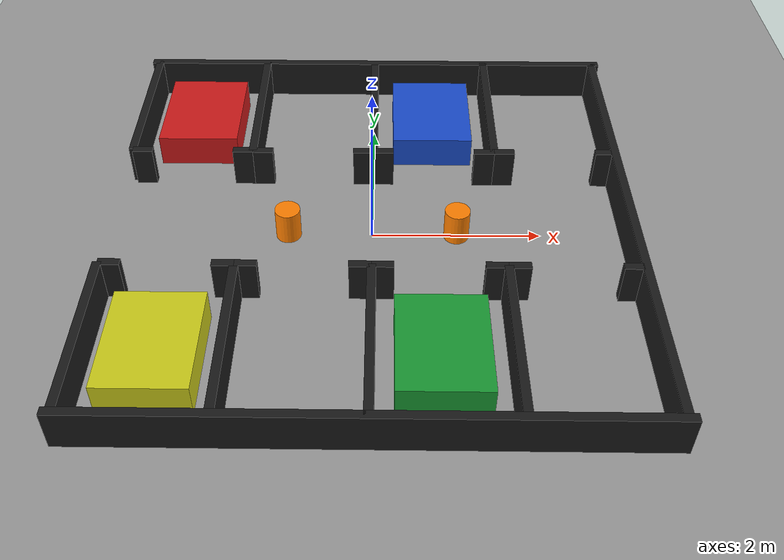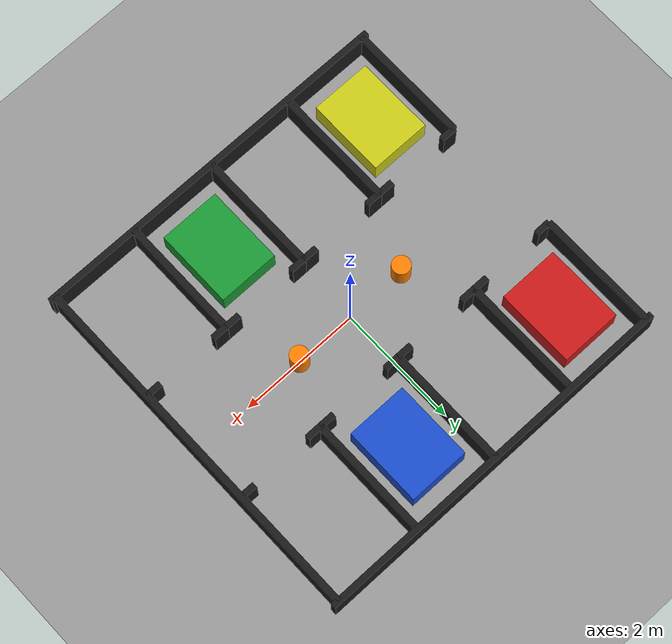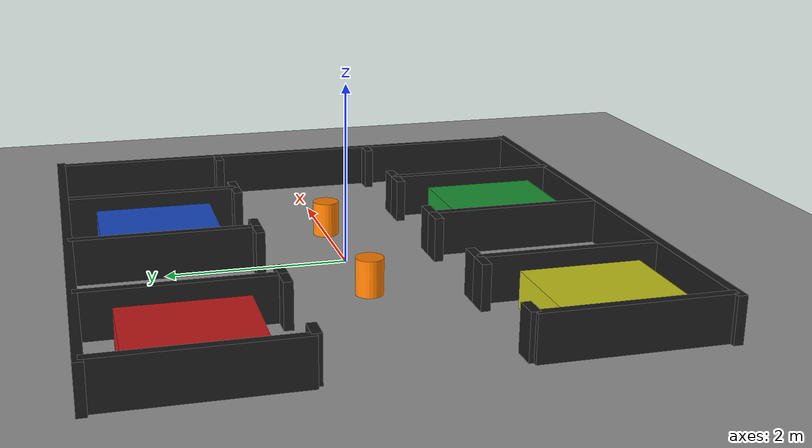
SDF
<?xml version="1.0" ?>
<sdf version='1.7'>
  <world name='parking_lot_world'>

    <physics name='default_physics' default='0' type='ode'>
      <max_step_size>0.001</max_step_size>
      <real_time_factor>1</real_time_factor>
      <real_time_update_rate>1000</real_time_update_rate>
    </physics>

    <plugin name='ignition::gazebo::systems::Physics' filename='libignition-gazebo-physics-system.so'/>
    <plugin name='ignition::gazebo::systems::UserCommands' filename='libignition-gazebo-user-commands-system.so'/>
    <plugin name='ignition::gazebo::systems::SceneBroadcaster' filename='libignition-gazebo-scene-broadcaster-system.so'/>

    <plugin name='ignition::gazebo::systems::Sensors' filename='libignition-gazebo-sensors-system.so'>
      <render_engine>ogre2</render_engine>
    </plugin>

    <gui fullscreen='0'>
      <camera name='user_camera'>
        <pose>-6 0 8 0 0.9 0</pose>
      </camera>
    </gui>

    <scene>
      <ambient>0.6 0.6 0.6 1</ambient>
      <background>0.8 0.8 0.8 1</background>
      <shadows>false</shadows>
    </scene>

    <light name='sun_direct' type='directional'>
      <cast_shadows>true</cast_shadows>
      <pose>0 0 10 0 0 0</pose>
      <diffuse>1 1 1 1</diffuse>
      <specular>0.5 0.5 0.5 1</specular>
      <direction>-0.5 0.1 -0.9</direction>
    </light>

    <model name='custom_ground_plane'>
      <static>true</static>
      <link name='link'>
        <collision name='collision'><geometry><plane><normal>0 0 1</normal><size>30 30</size></plane></geometry></collision>
        <visual name='visual'>
          <geometry><plane><normal>0 0 1</normal><size>30 30</size></plane></geometry>
          <material><ambient>0.6 0.6 0.6 1</ambient><diffuse>0.6 0.6 0.6 1</diffuse></material>
        </visual>
      </link>
    </model>

    <model name='parking_lot_walls'>
      <static>true</static>

      <link name='outer_north'>
        <pose>0 3.0 0.25 0 0 0</pose>
        <collision name='col'><geometry><box><size>6.2 0.1 0.5</size></box></geometry></collision>
        <visual name='vis'><geometry><box><size>6.2 0.1 0.5</size></box></geometry><material><ambient>0.1 0.1 0.1 1</ambient><diffuse>0.1 0.1 0.1 1</diffuse></material></visual>
      </link>
      <link name='outer_south'>
        <pose>0 -3.0 0.25 0 0 0</pose>
        <collision name='col'><geometry><box><size>6.2 0.1 0.5</size></box></geometry></collision>
        <visual name='vis'><geometry><box><size>6.2 0.1 0.5</size></box></geometry><material><ambient>0.1 0.1 0.1 1</ambient><diffuse>0.1 0.1 0.1 1</diffuse></material></visual>
      </link>
      <link name='outer_east'>
        <pose>3.0 0 0.25 0 0 0</pose>
        <collision name='col'><geometry><box><size>0.1 6.0 0.5</size></box></geometry></collision>
        <visual name='vis'><geometry><box><size>0.1 6.0 0.5</size></box></geometry><material><ambient>0.1 0.1 0.1 1</ambient><diffuse>0.1 0.1 0.1 1</diffuse></material></visual>
      </link>

      <link name='outer_west_north'>
        <pose>-3.0 2.0 0.25 0 0 0</pose>
        <collision name='col'><geometry><box><size>0.1 2.0 0.5</size></box></geometry></collision>
        <visual name='vis'><geometry><box><size>0.1 2.0 0.5</size></box></geometry><material><ambient>0.1 0.1 0.1 1</ambient><diffuse>0.1 0.1 0.1 1</diffuse></material></visual>
      </link>
      <link name='outer_west_south'>
        <pose>-3.0 -2.0 0.25 0 0 0</pose>
        <collision name='col'><geometry><box><size>0.1 2.0 0.5</size></box></geometry></collision>
        <visual name='vis'><geometry><box><size>0.1 2.0 0.5</size></box></geometry><material><ambient>0.1 0.1 0.1 1</ambient><diffuse>0.1 0.1 0.1 1</diffuse></material></visual>
      </link>

      <link name='divider_top_1'><pose>-1.5 2.0 0.25 0 0 0</pose><collision name='col'><geometry><box><size>0.1 2.0 0.5</size></box></geometry></collision><visual name='vis'><geometry><box><size>0.1 2.0 0.5</size></box></geometry><material><ambient>0.1 0.1 0.1 1</ambient><diffuse>0.1 0.1 0.1 1</diffuse></material></visual></link>
      <link name='divider_top_2'><pose>0.0 2.0 0.25 0 0 0</pose><collision name='col'><geometry><box><size>0.1 2.0 0.5</size></box></geometry></collision><visual name='vis'><geometry><box><size>0.1 2.0 0.5</size></box></geometry><material><ambient>0.1 0.1 0.1 1</ambient><diffuse>0.1 0.1 0.1 1</diffuse></material></visual></link>
      <link name='divider_top_3'><pose>1.5 2.0 0.25 0 0 0</pose><collision name='col'><geometry><box><size>0.1 2.0 0.5</size></box></geometry></collision><visual name='vis'><geometry><box><size>0.1 2.0 0.5</size></box></geometry><material><ambient>0.1 0.1 0.1 1</ambient><diffuse>0.1 0.1 0.1 1</diffuse></material></visual></link>
      <link name='divider_bottom_1'><pose>-1.5 -2.0 0.25 0 0 0</pose><collision name='col'><geometry><box><size>0.1 2.0 0.5</size></box></geometry></collision><visual name='vis'><geometry><box><size>0.1 2.0 0.5</size></box></geometry><material><ambient>0.1 0.1 0.1 1</ambient><diffuse>0.1 0.1 0.1 1</diffuse></material></visual></link>
      <link name='divider_bottom_2'><pose>0.0 -2.0 0.25 0 0 0</pose><collision name='col'><geometry><box><size>0.1 2.0 0.5</size></box></geometry></collision><visual name='vis'><geometry><box><size>0.1 2.0 0.5</size></box></geometry><material><ambient>0.1 0.1 0.1 1</ambient><diffuse>0.1 0.1 0.1 1</diffuse></material></visual></link>
      <link name='divider_bottom_3'><pose>1.5 -2.0 0.25 0 0 0</pose><collision name='col'><geometry><box><size>0.1 2.0 0.5</size></box></geometry></collision><visual name='vis'><geometry><box><size>0.1 2.0 0.5</size></box></geometry><material><ambient>0.1 0.1 0.1 1</ambient><diffuse>0.1 0.1 0.1 1</diffuse></material></visual></link>

      <link name='gate_wall_n1'><pose>-2.875 1.0 0.25 0 0 0</pose><collision name='col'><geometry><box><size>0.25 0.1 0.5</size></box></geometry></collision><visual name='vis'><geometry><box><size>0.25 0.1 0.5</size></box></geometry><material><ambient>0.1 0.1 0.1 1</ambient><diffuse>0.1 0.1 0.1 1</diffuse></material></visual></link>
      <link name='gate_wall_n2'><pose>-1.625 1.0 0.25 0 0 0</pose><collision name='col'><geometry><box><size>0.25 0.1 0.5</size></box></geometry></collision><visual name='vis'><geometry><box><size>0.25 0.1 0.5</size></box></geometry><material><ambient>0.1 0.1 0.1 1</ambient><diffuse>0.1 0.1 0.1 1</diffuse></material></visual></link>
      <link name='gate_wall_n3'><pose>-1.375 1.0 0.25 0 0 0</pose><collision name='col'><geometry><box><size>0.25 0.1 0.5</size></box></geometry></collision><visual name='vis'><geometry><box><size>0.25 0.1 0.5</size></box></geometry><material><ambient>0.1 0.1 0.1 1</ambient><diffuse>0.1 0.1 0.1 1</diffuse></material></visual></link>
      <link name='gate_wall_n4'><pose>-0.125 1.0 0.25 0 0 0</pose><collision name='col'><geometry><box><size>0.25 0.1 0.5</size></box></geometry></collision><visual name='vis'><geometry><box><size>0.25 0.1 0.5</size></box></geometry><material><ambient>0.1 0.1 0.1 1</ambient><diffuse>0.1 0.1 0.1 1</diffuse></material></visual></link>
      <link name='gate_wall_n5'><pose>0.125 1.0 0.25 0 0 0</pose><collision name='col'><geometry><box><size>0.25 0.1 0.5</size></box></geometry></collision><visual name='vis'><geometry><box><size>0.25 0.1 0.5</size></box></geometry><material><ambient>0.1 0.1 0.1 1</ambient><diffuse>0.1 0.1 0.1 1</diffuse></material></visual></link>
      <link name='gate_wall_n6'><pose>1.375 1.0 0.25 0 0 0</pose><collision name='col'><geometry><box><size>0.25 0.1 0.5</size></box></geometry></collision><visual name='vis'><geometry><box><size>0.25 0.1 0.5</size></box></geometry><material><ambient>0.1 0.1 0.1 1</ambient><diffuse>0.1 0.1 0.1 1</diffuse></material></visual></link>
      <link name='gate_wall_n7'><pose>1.625 1.0 0.25 0 0 0</pose><collision name='col'><geometry><box><size>0.25 0.1 0.5</size></box></geometry></collision><visual name='vis'><geometry><box><size>0.25 0.1 0.5</size></box></geometry><material><ambient>0.1 0.1 0.1 1</ambient><diffuse>0.1 0.1 0.1 1</diffuse></material></visual></link>
      <link name='gate_wall_n8'><pose>2.875 1.0 0.25 0 0 0</pose><collision name='col'><geometry><box><size>0.25 0.1 0.5</size></box></geometry></collision><visual name='vis'><geometry><box><size>0.25 0.1 0.5</size></box></geometry><material><ambient>0.1 0.1 0.1 1</ambient><diffuse>0.1 0.1 0.1 1</diffuse></material></visual></link>

      <link name='gate_wall_s1'><pose>-2.875 -1.0 0.25 0 0 0</pose><collision name='col'><geometry><box><size>0.25 0.1 0.5</size></box></geometry></collision><visual name='vis'><geometry><box><size>0.25 0.1 0.5</size></box></geometry><material><ambient>0.1 0.1 0.1 1</ambient><diffuse>0.1 0.1 0.1 1</diffuse></material></visual></link>
      <link name='gate_wall_s2'><pose>-1.625 -1.0 0.25 0 0 0</pose><collision name='col'><geometry><box><size>0.25 0.1 0.5</size></box></geometry></collision><visual name='vis'><geometry><box><size>0.25 0.1 0.5</size></box></geometry><material><ambient>0.1 0.1 0.1 1</ambient><diffuse>0.1 0.1 0.1 1</diffuse></material></visual></link>
      <link name='gate_wall_s3'><pose>-1.375 -1.0 0.25 0 0 0</pose><collision name='col'><geometry><box><size>0.25 0.1 0.5</size></box></geometry></collision><visual name='vis'><geometry><box><size>0.25 0.1 0.5</size></box></geometry><material><ambient>0.1 0.1 0.1 1</ambient><diffuse>0.1 0.1 0.1 1</diffuse></material></visual></link>
      <link name='gate_wall_s4'><pose>-0.125 -1.0 0.25 0 0 0</pose><collision name='col'><geometry><box><size>0.25 0.1 0.5</size></box></geometry></collision><visual name='vis'><geometry><box><size>0.25 0.1 0.5</size></box></geometry><material><ambient>0.1 0.1 0.1 1</ambient><diffuse>0.1 0.1 0.1 1</diffuse></material></visual></link>
      <link name='gate_wall_s5'><pose>0.125 -1.0 0.25 0 0 0</pose><collision name='col'><geometry><box><size>0.25 0.1 0.5</size></box></geometry></collision><visual name='vis'><geometry><box><size>0.25 0.1 0.5</size></box></geometry><material><ambient>0.1 0.1 0.1 1</ambient><diffuse>0.1 0.1 0.1 1</diffuse></material></visual></link>
      <link name='gate_wall_s6'><pose>1.375 -1.0 0.25 0 0 0</pose><collision name='col'><geometry><box><size>0.25 0.1 0.5</size></box></geometry></collision><visual name='vis'><geometry><box><size>0.25 0.1 0.5</size></box></geometry><material><ambient>0.1 0.1 0.1 1</ambient><diffuse>0.1 0.1 0.1 1</diffuse></material></visual></link>
      <link name='gate_wall_s7'><pose>1.625 -1.0 0.25 0 0 0</pose><collision name='col'><geometry><box><size>0.25 0.1 0.5</size></box></geometry></collision><visual name='vis'><geometry><box><size>0.25 0.1 0.5</size></box></geometry><material><ambient>0.1 0.1 0.1 1</ambient><diffuse>0.1 0.1 0.1 1</diffuse></material></visual></link>
      <link name='gate_wall_s8'><pose>2.875 -1.0 0.25 0 0 0</pose><collision name='col'><geometry><box><size>0.25 0.1 0.5</size></box></geometry></collision><visual name='vis'><geometry><box><size>0.25 0.1 0.5</size></box></geometry><material><ambient>0.1 0.1 0.1 1</ambient><diffuse>0.1 0.1 0.1 1</diffuse></material></visual></link>

    </model>

    <model name='parked_cars'>
      <static>true</static>

      <link name='car1_red'>
        <pose>-2.25 2.0 0.2 0 0 0</pose> <collision name='col'><geometry><box><size>1.0 1.3 0.4</size></box></geometry></collision>
        <visual name='vis'>
          <geometry><box><size>1.0 1.3 0.4</size></box></geometry>
          <material><ambient>0.8 0.1 0.1 1</ambient><diffuse>0.8 0.1 0.1 1</diffuse></material>
        </visual>
      </link>

      <link name='car2_blue'>
        <pose>0.75 2.0 0.2 0 0 0</pose>
        <collision name='col'><geometry><box><size>1.0 1.3 0.4</size></box></geometry></collision>
        <visual name='vis'>
          <geometry><box><size>1.0 1.3 0.4</size></box></geometry>
          <material><ambient>0.1 0.3 0.8 1</ambient><diffuse>0.1 0.3 0.8 1</diffuse></material>
        </visual>
      </link>

      <link name='car3_yellow'>
        <pose>-2.25 -2.0 0.2 0 0 0</pose>
        <collision name='col'><geometry><box><size>1.0 1.3 0.4</size></box></geometry></collision>
        <visual name='vis'>
          <geometry><box><size>1.0 1.3 0.4</size></box></geometry>
          <material><ambient>0.8 0.8 0.1 1</ambient><diffuse>0.8 0.8 0.1 1</diffuse></material>
        </visual>
      </link>

      <link name='car4_green'>
        <pose>0.75 -2.0 0.2 0 0 0</pose>
        <collision name='col'><geometry><box><size>1.0 1.3 0.4</size></box></geometry></collision>
        <visual name='vis'>
          <geometry><box><size>1.0 1.3 0.4</size></box></geometry>
          <material><ambient>0.1 0.6 0.2 1</ambient><diffuse>0.1 0.6 0.2 1</diffuse></material>
        </visual>
      </link>

    </model>

    <model name='aisle_obstacles'>
      <static>true</static>

      <link name='pillar1_orange'>
        <pose>-1.0 0.0 0.2 0 0 0</pose> <collision name='col'>
          <geometry>
            <cylinder>
              <radius>0.15</radius> <length>0.4</length>  </cylinder>
          </geometry>
        </collision>
        <visual name='vis'>
          <geometry>
            <cylinder>
              <radius>0.15</radius>
              <length>0.4</length>
            </cylinder>
          </geometry>
          <material><ambient>1.0 0.5 0.0 1</ambient><diffuse>1.0 0.5 0.0 1</diffuse></material>
        </visual>
      </link>

      <link name='pillar2_orange'>
        <pose>1.0 0.0 0.2 0 0 0</pose>
        <collision name='col'>
          <geometry>
            <cylinder>
              <radius>0.15</radius>
              <length>0.4</length>
            </cylinder>
          </geometry>
        </collision>
        <visual name='vis'>
          <geometry>
            <cylinder>
              <radius>0.15</radius>
              <length>0.4</length>
            </cylinder>
          </geometry>
          <material><ambient>1.0 0.5 0.0 1</ambient><diffuse>1.0 0.5 0.0 1</diffuse></material>
        </visual>
      </link>
    </model>

  </world>
</sdf>
